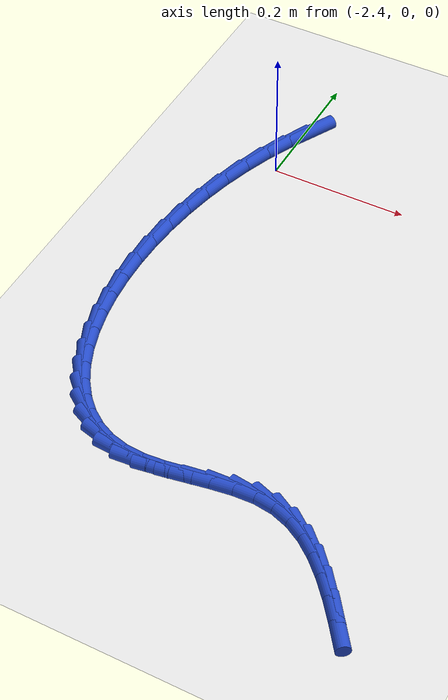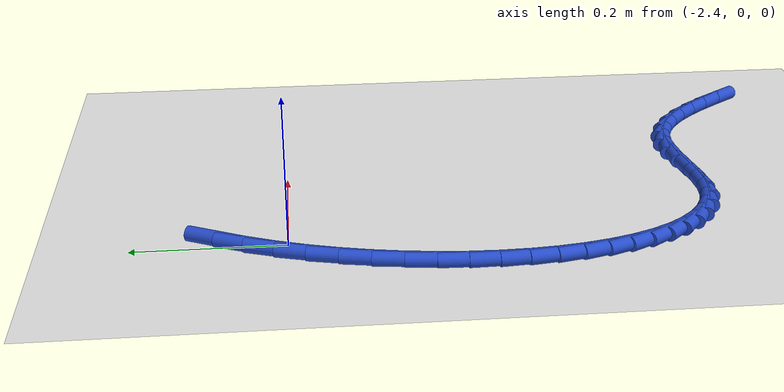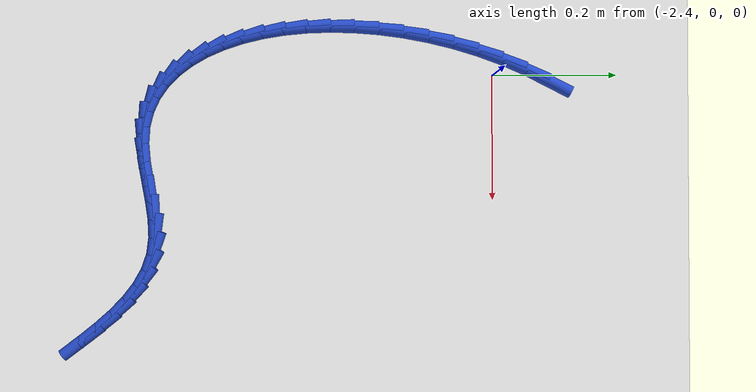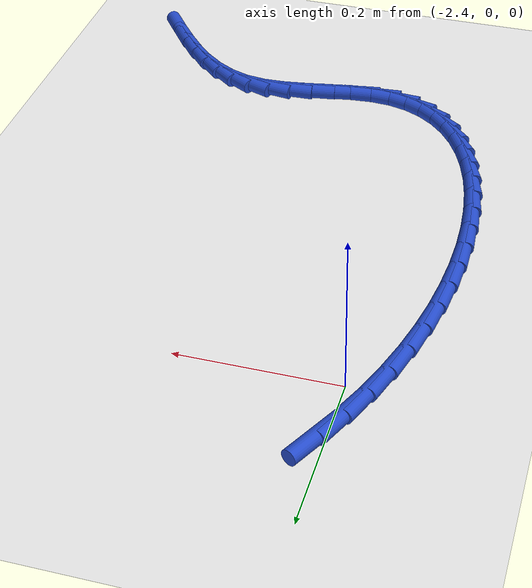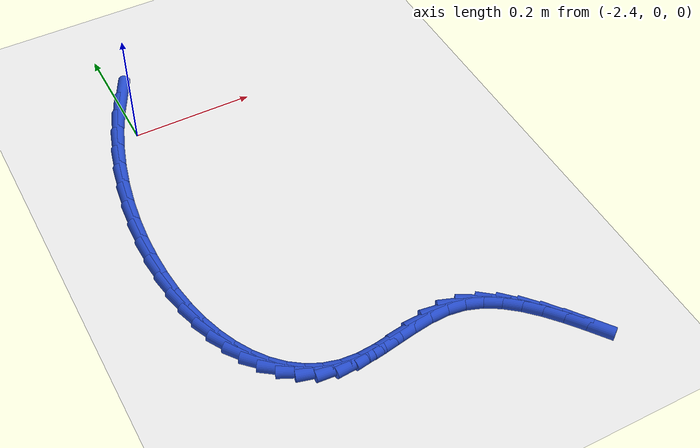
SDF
<sdf version="1.6">
 <world name="default">
  <model name="ground_plane">
   <static>1</static>
   <link name="link">
    <collision name="collision">
     <geometry><plane><normal>0 0 1</normal><size>100 100</size></plane></geometry>
     <surface><friction><ode><mu>100</mu><mu2>50</mu2></ode></friction></surface>
    </collision>
    <visual name="visual">
     <cast_shadows>0</cast_shadows>
     <geometry><plane><normal>0 0 1</normal><size>100 100</size></plane></geometry>
     <material>
      <script><uri>file://media/materials/scripts/gazebo.material</uri><name>Gazebo/WhiteGlow</name></script>
     </material>
    </visual>
   </link>
  </model>
  <model name="line">
   <link name="link_146">
    <pose>-2.3905971908638595 0.09075574928023586 0.01 0 1.57 1.0911080571417329</pose>
    <collision name="collision">
     <geometry><cylinder><radius>0.01</radius><length>0.08</length></cylinder></geometry>
    </collision>
    <visual name="visual">
     <material>
      <script><name>Gazebo/Blue</name><uri>file://media/materials/scripts/gazebo.material</uri></script>
     </material>
     <geometry><cylinder><radius>0.01</radius><length>0.08</length></cylinder></geometry>
    </visual>
   </link>
   <link name="link_147">
    <pose>-2.409574260767318 0.05427644498902451 0.01 0 1.57 1.1543864208887782</pose>
    <collision name="collision">
     <geometry><cylinder><radius>0.01</radius><length>0.08</length></cylinder></geometry>
    </collision>
    <visual name="visual">
     <material>
      <script><name>Gazebo/Blue</name><uri>file://media/materials/scripts/gazebo.material</uri></script>
     </material>
     <geometry><cylinder><radius>0.01</radius><length>0.08</length></cylinder></geometry>
    </visual>
   </link>
   <link name="link_148">
    <pose>-2.426303732722309 0.016450355294212404 0.01 0 1.57 1.2141101172132232</pose>
    <collision name="collision">
     <geometry><cylinder><radius>0.01</radius><length>0.08</length></cylinder></geometry>
    </collision>
    <visual name="visual">
     <material>
      <script><name>Gazebo/Blue</name><uri>file://media/materials/scripts/gazebo.material</uri></script>
     </material>
     <geometry><cylinder><radius>0.01</radius><length>0.08</length></cylinder></geometry>
    </visual>
   </link>
   <link name="link_149">
    <pose>-2.4407891783789135 -0.022423778766831687 0.01 0 1.57 1.2710721656224535</pose>
    <collision name="collision">
     <geometry><cylinder><radius>0.01</radius><length>0.08</length></cylinder></geometry>
    </collision>
    <visual name="visual">
     <material>
      <script><name>Gazebo/Blue</name><uri>file://media/materials/scripts/gazebo.material</uri></script>
     </material>
     <geometry><cylinder><radius>0.01</radius><length>0.08</length></cylinder></geometry>
    </visual>
   </link>
   <link name="link_150">
    <pose>-2.453034169387216 -0.062047216156739006 0.01 0 1.57 1.326061742575167</pose>
    <collision name="collision">
     <geometry><cylinder><radius>0.01</radius><length>0.08</length></cylinder></geometry>
    </collision>
    <visual name="visual">
     <material>
      <script><name>Gazebo/Blue</name><uri>file://media/materials/scripts/gazebo.material</uri></script>
     </material>
     <geometry><cylinder><radius>0.01</radius><length>0.08</length></cylinder></geometry>
    </visual>
   </link>
   <link name="link_151">
    <pose>-2.463042277397297 -0.10212121583814063 0.01 0 1.57 1.3798717746580214</pose>
    <collision name="collision">
     <geometry><cylinder><radius>0.01</radius><length>0.08</length></cylinder></geometry>
    </collision>
    <visual name="visual">
     <material>
      <script><name>Gazebo/Blue</name><uri>file://media/materials/scripts/gazebo.material</uri></script>
     </material>
     <geometry><cylinder><radius>0.01</radius><length>0.08</length></cylinder></geometry>
    </visual>
   </link>
   <link name="link_152">
    <pose>-2.470817074059238 -0.1423470367736678 0.01 0 1.57 1.4333155805708768</pose>
    <collision name="collision">
     <geometry><cylinder><radius>0.01</radius><length>0.08</length></cylinder></geometry>
    </collision>
    <visual name="visual">
     <material>
      <script><name>Gazebo/Blue</name><uri>file://media/materials/scripts/gazebo.material</uri></script>
     </material>
     <geometry><cylinder><radius>0.01</radius><length>0.08</length></cylinder></geometry>
    </visual>
   </link>
   <link name="link_153">
    <pose>-2.4763621310231234 -0.1824259379259517 0.01 0 1.57 1.4872512121113661</pose>
    <collision name="collision">
     <geometry><cylinder><radius>0.01</radius><length>0.08</length></cylinder></geometry>
    </collision>
    <visual name="visual">
     <material>
      <script><name>Gazebo/Blue</name><uri>file://media/materials/scripts/gazebo.material</uri></script>
     </material>
     <geometry><cylinder><radius>0.01</radius><length>0.08</length></cylinder></geometry>
    </visual>
   </link>
   <link name="link_154">
    <pose>-2.479681019939034 -0.22205917825762356 0.01 0 1.57 1.5426133752923157</pose>
    <collision name="collision">
     <geometry><cylinder><radius>0.01</radius><length>0.08</length></cylinder></geometry>
    </collision>
    <visual name="visual">
     <material>
      <script><name>Gazebo/Blue</name><uri>file://media/materials/scripts/gazebo.material</uri></script>
     </material>
     <geometry><cylinder><radius>0.01</radius><length>0.08</length></cylinder></geometry>
    </visual>
   </link>
   <link name="link_155">
    <pose>-2.4807773124570525 -0.26094801673131557 0.01 0 1.57 -1.5411389767630939</pose>
    <collision name="collision">
     <geometry><cylinder><radius>0.01</radius><length>0.08</length></cylinder></geometry>
    </collision>
    <visual name="visual">
     <material>
      <script><name>Gazebo/Blue</name><uri>file://media/materials/scripts/gazebo.material</uri></script>
     </material>
     <geometry><cylinder><radius>0.01</radius><length>0.08</length></cylinder></geometry>
    </visual>
   </link>
   <link name="link_156">
    <pose>-2.47965458022726 -0.2987937123096567 0.01 0 1.57 -1.4796023878356885</pose>
    <collision name="collision">
     <geometry><cylinder><radius>0.01</radius><length>0.08</length></cylinder></geometry>
    </collision>
    <visual name="visual">
     <material>
      <script><name>Gazebo/Blue</name><uri>file://media/materials/scripts/gazebo.material</uri></script>
     </material>
     <geometry><cylinder><radius>0.01</radius><length>0.08</length></cylinder></geometry>
    </visual>
   </link>
   <link name="link_157">
    <pose>-2.4763163948997398 -0.33529752395527934 0.01 0 1.57 -1.4129254603557588</pose>
    <collision name="collision">
     <geometry><cylinder><radius>0.01</radius><length>0.08</length></cylinder></geometry>
    </collision>
    <visual name="visual">
     <material>
      <script><name>Gazebo/Blue</name><uri>file://media/materials/scripts/gazebo.material</uri></script>
     </material>
     <geometry><cylinder><radius>0.01</radius><length>0.08</length></cylinder></geometry>
    </visual>
   </link>
   <link name="link_158">
    <pose>-2.470766328124574 -0.3701607106308145 0.01 0 1.57 -1.33937197714746</pose>
    <collision name="collision">
     <geometry><cylinder><radius>0.01</radius><length>0.08</length></cylinder></geometry>
    </collision>
    <visual name="visual">
     <material>
      <script><name>Gazebo/Blue</name><uri>file://media/materials/scripts/gazebo.material</uri></script>
     </material>
     <geometry><cylinder><radius>0.01</radius><length>0.08</length></cylinder></geometry>
    </visual>
   </link>
   <link name="link_159">
    <pose>-2.4630079515518446 -0.40308453129889366 0.01 0 1.57 -1.256851607459202</pose>
    <collision name="collision">
     <geometry><cylinder><radius>0.01</radius><length>0.08</length></cylinder></geometry>
    </collision>
    <visual name="visual">
     <material>
      <script><name>Gazebo/Blue</name><uri>file://media/materials/scripts/gazebo.material</uri></script>
     </material>
     <geometry><cylinder><radius>0.01</radius><length>0.08</length></cylinder></geometry>
    </visual>
   </link>
   <link name="link_160">
    <pose>-2.453044836831634 -0.43377024492214766 0.01 0 1.57 -1.162892700455357</pose>
    <collision name="collision">
     <geometry><cylinder><radius>0.01</radius><length>0.08</length></cylinder></geometry>
    </collision>
    <visual name="visual">
     <material>
      <script><name>Gazebo/Blue</name><uri>file://media/materials/scripts/gazebo.material</uri></script>
     </material>
     <geometry><cylinder><radius>0.01</radius><length>0.08</length></cylinder></geometry>
    </visual>
   </link>
   <link name="link_161">
    <pose>-2.440880555614024 -0.4619191104632079 0.01 0 1.57 -1.0547186136065385</pose>
    <collision name="collision">
     <geometry><cylinder><radius>0.01</radius><length>0.08</length></cylinder></geometry>
    </collision>
    <visual name="visual">
     <material>
      <script><name>Gazebo/Blue</name><uri>file://media/materials/scripts/gazebo.material</uri></script>
     </material>
     <geometry><cylinder><radius>0.01</radius><length>0.08</length></cylinder></geometry>
    </visual>
   </link>
   <link name="link_162">
    <pose>-2.4265186795490967 -0.4872323868847054 0.01 0 1.57 -0.9295587916855307</pose>
    <collision name="collision">
     <geometry><cylinder><radius>0.01</radius><length>0.08</length></cylinder></geometry>
    </collision>
    <visual name="visual">
     <material>
      <script><name>Gazebo/Blue</name><uri>file://media/materials/scripts/gazebo.material</uri></script>
     </material>
     <geometry><cylinder><radius>0.01</radius><length>0.08</length></cylinder></geometry>
    </visual>
   </link>
   <link name="link_163">
    <pose>-2.4099627802869343 -0.5094113331492716 0.01 0 1.57 -0.7853854743922635</pose>
    <collision name="collision">
     <geometry><cylinder><radius>0.01</radius><length>0.08</length></cylinder></geometry>
    </collision>
    <visual name="visual">
     <material>
      <script><name>Gazebo/Blue</name><uri>file://media/materials/scripts/gazebo.material</uri></script>
     </material>
     <geometry><cylinder><radius>0.01</radius><length>0.08</length></cylinder></geometry>
    </visual>
   </link>
   <link name="link_164">
    <pose>-2.3912164294776193 -0.528157208219538 0.01 0 1.57 -0.622200208347375</pose>
    <collision name="collision">
     <geometry><cylinder><radius>0.01</radius><length>0.08</length></cylinder></geometry>
    </collision>
    <visual name="visual">
     <material>
      <script><name>Gazebo/Blue</name><uri>file://media/materials/scripts/gazebo.material</uri></script>
     </material>
     <geometry><cylinder><radius>0.01</radius><length>0.08</length></cylinder></geometry>
    </visual>
   </link>
   <link name="link_165">
    <pose>-2.370283198771234 -0.5431712710581346 0.01 0 1.57 -0.443559637309718</pose>
    <collision name="collision">
     <geometry><cylinder><radius>0.01</radius><length>0.08</length></cylinder></geometry>
    </collision>
    <visual name="visual">
     <material>
      <script><name>Gazebo/Blue</name><uri>file://media/materials/scripts/gazebo.material</uri></script>
     </material>
     <geometry><cylinder><radius>0.01</radius><length>0.08</length></cylinder></geometry>
    </visual>
   </link>
   <link name="link_166">
    <pose>-2.3471666598178613 -0.5541547806276936 0.01 0 1.57 -0.2572239139976888</pose>
    <collision name="collision">
     <geometry><cylinder><radius>0.01</radius><length>0.08</length></cylinder></geometry>
    </collision>
    <visual name="visual">
     <material>
      <script><name>Gazebo/Blue</name><uri>file://media/materials/scripts/gazebo.material</uri></script>
     </material>
     <geometry><cylinder><radius>0.01</radius><length>0.08</length></cylinder></geometry>
    </visual>
   </link>
   <link name="link_167">
    <pose>-2.321870384267581 -0.5608089958908455 0.01 0 1.57 -0.07374833594979674</pose>
    <collision name="collision">
     <geometry><cylinder><radius>0.01</radius><length>0.08</length></cylinder></geometry>
    </collision>
    <visual name="visual">
     <material>
      <script><name>Gazebo/Blue</name><uri>file://media/materials/scripts/gazebo.material</uri></script>
     </material>
     <geometry><cylinder><radius>0.01</radius><length>0.08</length></cylinder></geometry>
    </visual>
   </link>
   <link name="link_168">
    <pose>-2.2943991498574596 -0.5628386346612727 0.01 0 1.57 0.07643043634878254</pose>
    <collision name="collision">
     <geometry><cylinder><radius>0.01</radius><length>0.08</length></cylinder></geometry>
    </collision>
    <visual name="visual">
     <material>
      <script><name>Gazebo/Blue</name><uri>file://media/materials/scripts/gazebo.material</uri></script>
     </material>
     <geometry><cylinder><radius>0.01</radius><length>0.08</length></cylinder></geometry>
    </visual>
   </link>
   <link name="link_169">
    <pose>-2.264979961648509 -0.5605857246850393 0.01 0 1.57 0.15580460039872268</pose>
    <collision name="collision">
     <geometry><cylinder><radius>0.01</radius><length>0.08</length></cylinder></geometry>
    </collision>
    <visual name="visual">
     <material>
      <script><name>Gazebo/Blue</name><uri>file://media/materials/scripts/gazebo.material</uri></script>
     </material>
     <geometry><cylinder><radius>0.01</radius><length>0.08</length></cylinder></geometry>
    </visual>
   </link>
   <link name="link_170">
    <pose>-2.2343201381772886 -0.555769750553677 0.01 0 1.57 0.17424417492633995</pose>
    <collision name="collision">
     <geometry><cylinder><radius>0.01</radius><length>0.08</length></cylinder></geometry>
    </collision>
    <visual name="visual">
     <material>
      <script><name>Gazebo/Blue</name><uri>file://media/materials/scripts/gazebo.material</uri></script>
     </material>
     <geometry><cylinder><radius>0.01</radius><length>0.08</length></cylinder></geometry>
    </visual>
   </link>
   <link name="link_171">
    <pose>-2.20318965051231 -0.5502898735977987 0.01 0 1.57 0.13681286239012688</pose>
    <collision name="collision">
     <geometry><cylinder><radius>0.01</radius><length>0.08</length></cylinder></geometry>
    </collision>
    <visual name="visual">
     <material>
      <script><name>Gazebo/Blue</name><uri>file://media/materials/scripts/gazebo.material</uri></script>
     </material>
     <geometry><cylinder><radius>0.01</radius><length>0.08</length></cylinder></geometry>
    </visual>
   </link>
   <link name="link_172">
    <pose>-2.1723584697220826 -0.546045255148017 0.01 0 1.57 0.03728538813500616</pose>
    <collision name="collision">
     <geometry><cylinder><radius>0.01</radius><length>0.08</length></cylinder></geometry>
    </collision>
    <visual name="visual">
     <material>
      <script><name>Gazebo/Blue</name><uri>file://media/materials/scripts/gazebo.material</uri></script>
     </material>
     <geometry><cylinder><radius>0.01</radius><length>0.08</length></cylinder></geometry>
    </visual>
   </link>
   <link name="link_173">
    <pose>-2.1425965668751186 -0.544935056534945 0.01 0 1.57 -0.13643253740515024</pose>
    <collision name="collision">
     <geometry><cylinder><radius>0.01</radius><length>0.08</length></cylinder></geometry>
    </collision>
    <visual name="visual">
     <material>
      <script><name>Gazebo/Blue</name><uri>file://media/materials/scripts/gazebo.material</uri></script>
     </material>
     <geometry><cylinder><radius>0.01</radius><length>0.08</length></cylinder></geometry>
    </visual>
   </link>
   <link name="link_174">
    <pose>-2.1146383287435815 -0.5487733144120417 0.01 0 1.57 -0.34153627394923497</pose>
    <collision name="collision">
     <geometry><cylinder><radius>0.01</radius><length>0.08</length></cylinder></geometry>
    </collision>
    <visual name="visual">
     <material>
      <script><name>Gazebo/Blue</name><uri>file://media/materials/scripts/gazebo.material</uri></script>
     </material>
     <geometry><cylinder><radius>0.01</radius><length>0.08</length></cylinder></geometry>
    </visual>
   </link>
   <link name="link_175">
    <pose>-2.0886486654286234 -0.5580117645657563 0.01 0 1.57 -0.5222580010099448</pose>
    <collision name="collision">
     <geometry><cylinder><radius>0.01</radius><length>0.08</length></cylinder></geometry>
    </collision>
    <visual name="visual">
     <material>
      <script><name>Gazebo/Blue</name><uri>file://media/materials/scripts/gazebo.material</uri></script>
     </material>
     <geometry><cylinder><radius>0.01</radius><length>0.08</length></cylinder></geometry>
    </visual>
   </link>
   <link name="link_176">
    <pose>-2.0643343566274943 -0.5720062042161221 0.01 0 1.57 -0.6672298178623305</pose>
    <collision name="collision">
     <geometry><cylinder><radius>0.01</radius><length>0.08</length></cylinder></geometry>
    </collision>
    <visual name="visual">
     <material>
      <script><name>Gazebo/Blue</name><uri>file://media/materials/scripts/gazebo.material</uri></script>
     </material>
     <geometry><cylinder><radius>0.01</radius><length>0.08</length></cylinder></geometry>
    </visual>
   </link>
   <link name="link_177">
    <pose>-2.041389197950655 -0.5900813700786898 0.01 0 1.57 -0.7761374079788796</pose>
    <collision name="collision">
     <geometry><cylinder><radius>0.01</radius><length>0.08</length></cylinder></geometry>
    </collision>
    <visual name="visual">
     <material>
      <script><name>Gazebo/Blue</name><uri>file://media/materials/scripts/gazebo.material</uri></script>
     </material>
     <geometry><cylinder><radius>0.01</radius><length>0.08</length></cylinder></geometry>
    </visual>
   </link>
   <link name="link_178">
    <pose>-2.019506985008566 -0.61156199886901 0.01 0 1.57 -0.8533482780711977</pose>
    <collision name="collision">
     <geometry><cylinder><radius>0.01</radius><length>0.08</length></cylinder></geometry>
    </collision>
    <visual name="visual">
     <material>
      <script><name>Gazebo/Blue</name><uri>file://media/materials/scripts/gazebo.material</uri></script>
     </material>
     <geometry><cylinder><radius>0.01</radius><length>0.08</length></cylinder></geometry>
    </visual>
   </link>
   <link name="link_179">
    <pose>-1.9983815134116878 -0.6357728273026328 0.01 0 1.57 -0.9039438220886008</pose>
    <collision name="collision">
     <geometry><cylinder><radius>0.01</radius><length>0.08</length></cylinder></geometry>
    </collision>
    <visual name="visual">
     <material>
      <script><name>Gazebo/Blue</name><uri>file://media/materials/scripts/gazebo.material</uri></script>
     </material>
     <geometry><cylinder><radius>0.01</radius><length>0.08</length></cylinder></geometry>
    </visual>
   </link>
   <link name="link_180">
    <pose>-1.97770657877048 -0.662038592095109 0.01 0 1.57 -0.9320224203003038</pose>
    <collision name="collision">
     <geometry><cylinder><radius>0.01</radius><length>0.08</length></cylinder></geometry>
    </collision>
    <visual name="visual">
     <material>
      <script><name>Gazebo/Blue</name><uri>file://media/materials/scripts/gazebo.material</uri></script>
     </material>
     <geometry><cylinder><radius>0.01</radius><length>0.08</length></cylinder></geometry>
    </visual>
   </link>
  </model>
 </world>
</sdf>
